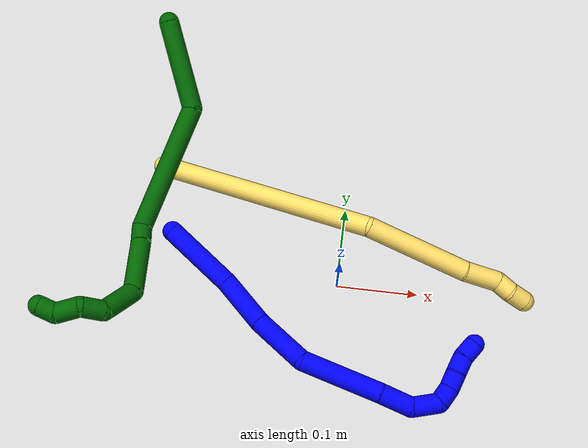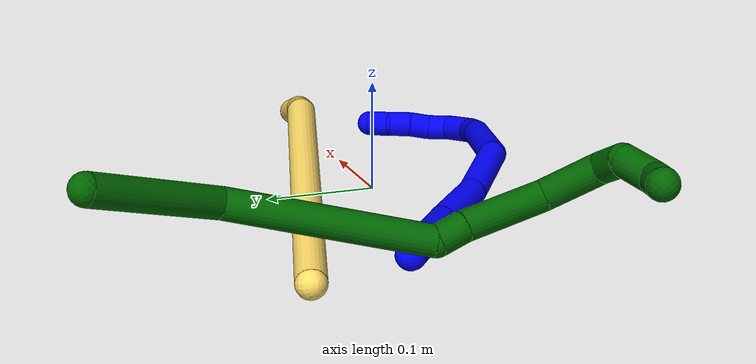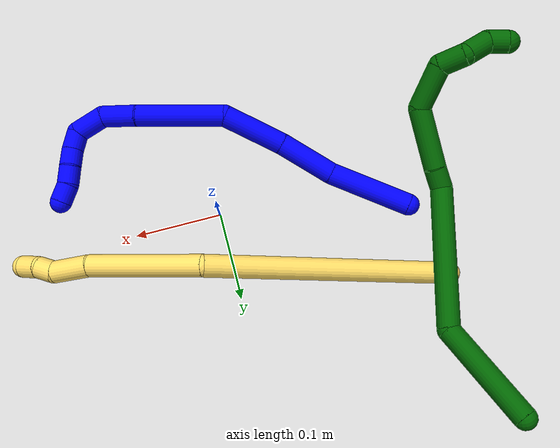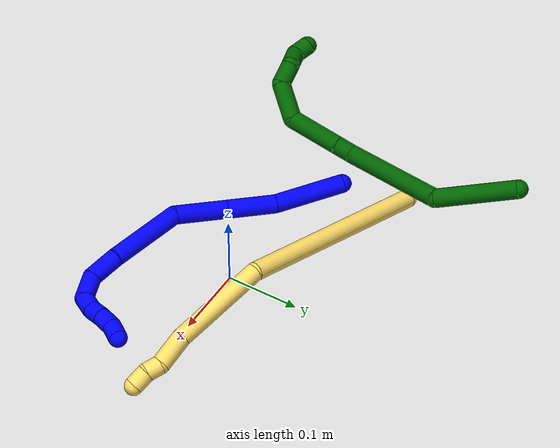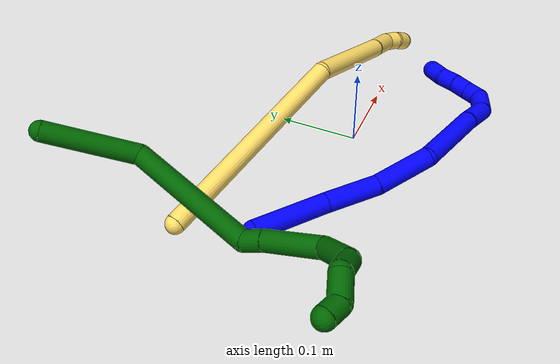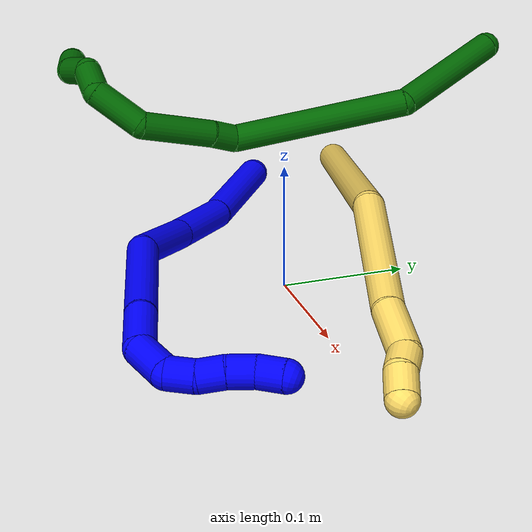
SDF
<sdf version="1.7">
 <world name="default">
  <model name="photoneo_s_sensor">
   <static>1</static>
   <pose>0 0 2 1.57079 1.57079 3.14159</pose>
   <link name="link">
    <inertial><mass>0.1</mass></inertial>
    <sensor name="sensor" type="depth">
     <update_rate>30</update_rate>
     <camera>
      <horizontal_fov>1.22</horizontal_fov>
      <image><width>1920</width><height>1200</height><format>B8G8R8</format></image>
      <clip><near>0.1</near><far>4</far></clip>
      <depth_camera><output>points</output></depth_camera>
     </camera>
     <plugin name="camera_plugin" filename="libgazebo_ros_depth_camera.so">
      <baseline>0.2</baseline>
      <alwaysOn>1</alwaysOn>
      <updateRate>0.0</updateRate>
      <cameraName>camera_ir</cameraName>
      <imageTopicName>/camera/color/image_raw</imageTopicName>
      <cameraInfoTopicName>/camera/color/camera_info</cameraInfoTopicName>
      <depthImageTopicName>/camera/depth/image_raw</depthImageTopicName>
      <depthImageCameraInfoTopicName>/camera/depth/camera_info</depthImageCameraInfoTopicName>
      <pointCloudTopicName>/camera/depth/points</pointCloudTopicName>
      <frameName>fr_optical</frameName>
      <pointCloudCutoff>0.1</pointCloudCutoff>
      <pointCloudCutoffMax>2.0</pointCloudCutoffMax>
      <distortionK1>0</distortionK1>
      <distortionK2>0</distortionK2>
      <distortionK3>0</distortionK3>
      <distortionT1>0</distortionT1>
      <distortionT2>0</distortionT2>
      <CxPrime>0</CxPrime>
      <Cx>0</Cx>
      <Cy>0</Cy>
      <focalLength>0</focalLength>
      <hackBaseline>0</hackBaseline>
     </plugin>
    </sensor>
   </link>
  </model>
  <model name="bin">
   <static>1</static>
   <link name="bottom">
    <collision name="collision-bottom">
     <pose>0 0 -0.01 0 -0 0</pose>
     <geometry><box><size>0.8 0.6 0.02</size></box></geometry>
     <surface>
      <friction><ode><mu>100</mu><mu2>100</mu2></ode></friction>
      <contact><collide_bitmask>65535</collide_bitmask></contact>
     </surface>
    </collision>
   </link>
   <link name="west_wall">
    <collision name="collision-west_wall">
     <pose>-0.41 0 0.1 0 -0 0</pose>
     <geometry><box><size>0.02 0.6 0.2</size></box></geometry>
     <surface>
      <friction><ode><mu>100</mu><mu2>100</mu2></ode></friction>
      <contact><collide_bitmask>65535</collide_bitmask></contact>
     </surface>
    </collision>
   </link>
   <link name="east_wall">
    <collision name="collision-east_wall">
     <pose>0.41 0 0.1 0 -0 0</pose>
     <geometry><box><size>0.02 0.6 0.2</size></box></geometry>
     <surface>
      <friction><ode><mu>100</mu><mu2>100</mu2></ode></friction>
      <contact><collide_bitmask>65535</collide_bitmask></contact>
     </surface>
    </collision>
   </link>
   <link name="south_wall">
    <collision name="collision-south_wall">
     <pose>0 -0.31 0.1 0 -0 0</pose>
     <geometry><box><size>0.8 0.02 0.2</size></box></geometry>
     <surface>
      <friction><ode><mu>100</mu><mu2>100</mu2></ode></friction>
      <contact><collide_bitmask>65535</collide_bitmask></contact>
     </surface>
    </collision>
   </link>
   <link name="north_wall">
    <collision name="collision-north_wall">
     <pose>0 0.31 0.1 0 -0 0</pose>
     <geometry><box><size>0.8 0.02 0.2</size></box></geometry>
     <surface>
      <friction><ode><mu>100</mu><mu2>100</mu2></ode></friction>
      <contact><collide_bitmask>65535</collide_bitmask></contact>
     </surface>
    </collision>
   </link>
  </model>
  <model name="1">
   <static>0</static>
   <link name="1">
    <collision name="collision-cylinder-e_1_1_4">
     <pose>0.040174 -0.025846 0.002964 1.45662 0.996124 0.903143</pose>
     <geometry><cylinder><radius>0.0125</radius><length>0.095723</length></cylinder></geometry>
     <surface>
      <friction><ode><mu>1.16</mu><mu2>1.16</mu2><slip1>0</slip1><slip2>0</slip2></ode></friction>
      <contact><ode><kp>1e+06</kp><kd>1</kd><max_vel>0</max_vel><min_depth>0.001</min_depth></ode></contact>
     </surface>
    </collision>
    <visual name="visual-cylinder-e_1_1_4">
     <pose>0.040174 -0.025846 0.002964 1.45662 0.996124 0.903143</pose>
     <geometry><cylinder><radius>0.0125</radius><length>0.095723</length></cylinder></geometry>
     <material><ambient>0 0 1 1</ambient></material>
    </visual>
    <collision name="collision-cylinder-e_2_4_5">
     <pose>0.109052 -0.067268 0.013447 1.12104 1.0285 0.681549</pose>
     <geometry><cylinder><radius>0.0125</radius><length>0.067026</length></cylinder></geometry>
     <surface>
      <friction><ode><mu>1.16</mu><mu2>1.16</mu2><slip1>0</slip1><slip2>0</slip2></ode></friction>
      <contact><ode><kp>1e+06</kp><kd>1</kd><max_vel>0</max_vel><min_depth>0.001</min_depth></ode></contact>
     </surface>
    </collision>
    <visual name="visual-cylinder-e_2_4_5">
     <pose>0.109052 -0.067268 0.013447 1.12104 1.0285 0.681549</pose>
     <geometry><cylinder><radius>0.0125</radius><length>0.067026</length></cylinder></geometry>
     <material><ambient>0 0 1 1</ambient></material>
    </visual>
    <collision name="collision-cylinder-e_3_5_6">
     <pose>0.171958 -0.095369 0.026352 1.16472 1.19148 0.839758</pose>
     <geometry><cylinder><radius>0.0125</radius><length>0.073636</length></cylinder></geometry>
     <surface>
      <friction><ode><mu>1.16</mu><mu2>1.16</mu2><slip1>0</slip1><slip2>0</slip2></ode></friction>
      <contact><ode><kp>1e+06</kp><kd>1</kd><max_vel>0</max_vel><min_depth>0.001</min_depth></ode></contact>
     </surface>
    </collision>
    <visual name="visual-cylinder-e_3_5_6">
     <pose>0.171958 -0.095369 0.026352 1.16472 1.19148 0.839758</pose>
     <geometry><cylinder><radius>0.0125</radius><length>0.073636</length></cylinder></geometry>
     <material><ambient>0 0 1 1</ambient></material>
    </visual>
    <collision name="collision-cylinder-e_4_6_7">
     <pose>0.24866 -0.1314 0.01611 2.15752 0.984545 1.57136</pose>
     <geometry><cylinder><radius>0.0125</radius><length>0.102041</length></cylinder></geometry>
     <surface>
      <friction><ode><mu>1.16</mu><mu2>1.16</mu2><slip1>0</slip1><slip2>0</slip2></ode></friction>
      <contact><ode><kp>1e+06</kp><kd>1</kd><max_vel>0</max_vel><min_depth>0.001</min_depth></ode></contact>
     </surface>
    </collision>
    <visual name="visual-cylinder-e_4_6_7">
     <pose>0.24866 -0.1314 0.01611 2.15752 0.984545 1.57136</pose>
     <geometry><cylinder><radius>0.0125</radius><length>0.102041</length></cylinder></geometry>
     <material><ambient>0 0 1 1</ambient></material>
    </visual>
    <collision name="collision-cylinder-e_5_7_8">
     <pose>0.306796 -0.166464 -0.006331 2.10346 0.86162 1.35491</pose>
     <geometry><cylinder><radius>0.0125</radius><length>0.041205</length></cylinder></geometry>
     <surface>
      <friction><ode><mu>1.16</mu><mu2>1.16</mu2><slip1>0</slip1><slip2>0</slip2></ode></friction>
      <contact><ode><kp>1e+06</kp><kd>1</kd><max_vel>0</max_vel><min_depth>0.001</min_depth></ode></contact>
     </surface>
    </collision>
    <visual name="visual-cylinder-e_5_7_8">
     <pose>0.306796 -0.166464 -0.006331 2.10346 0.86162 1.35491</pose>
     <geometry><cylinder><radius>0.0125</radius><length>0.041205</length></cylinder></geometry>
     <material><ambient>0 0 1 1</ambient></material>
    </visual>
    <collision name="collision-cylinder-e_6_8_9">
     <pose>0.332969 -0.182255 -0.026379 2.83201 0.648796 2.27268</pose>
     <geometry><cylinder><radius>0.0125</radius><length>0.034879</length></cylinder></geometry>
     <surface>
      <friction><ode><mu>1.16</mu><mu2>1.16</mu2><slip1>0</slip1><slip2>0</slip2></ode></friction>
      <contact><ode><kp>1e+06</kp><kd>1</kd><max_vel>0</max_vel><min_depth>0.001</min_depth></ode></contact>
     </surface>
    </collision>
    <visual name="visual-cylinder-e_6_8_9">
     <pose>0.332969 -0.182255 -0.026379 2.83201 0.648796 2.27268</pose>
     <geometry><cylinder><radius>0.0125</radius><length>0.034879</length></cylinder></geometry>
     <material><ambient>0 0 1 1</ambient></material>
    </visual>
    <collision name="collision-cylinder-e_7_9_10">
     <pose>0.344274 -0.183781 -0.050272 -2.89278 0.06967 -0.543566</pose>
     <geometry><cylinder><radius>0.0125</radius><length>0.022044</length></cylinder></geometry>
     <surface>
      <friction><ode><mu>1.16</mu><mu2>1.16</mu2><slip1>0</slip1><slip2>0</slip2></ode></friction>
      <contact><ode><kp>1e+06</kp><kd>1</kd><max_vel>0</max_vel><min_depth>0.001</min_depth></ode></contact>
     </surface>
    </collision>
    <visual name="visual-cylinder-e_7_9_10">
     <pose>0.344274 -0.183781 -0.050272 -2.89278 0.06967 -0.543566</pose>
     <geometry><cylinder><radius>0.0125</radius><length>0.022044</length></cylinder></geometry>
     <material><ambient>0 0 1 1</ambient></material>
    </visual>
    <collision name="collision-cylinder-e_8_10_11">
     <pose>0.344974 -0.175965 -0.069933 -2.62554 -0.006461 0.02448</pose>
     <geometry><cylinder><radius>0.0125</radius><length>0.020706</length></cylinder></geometry>
     <surface>
      <friction><ode><mu>1.16</mu><mu2>1.16</mu2><slip1>0</slip1><slip2>0</slip2></ode></friction>
      <contact><ode><kp>1e+06</kp><kd>1</kd><max_vel>0</max_vel><min_depth>0.001</min_depth></ode></contact>
     </surface>
    </collision>
    <visual name="visual-cylinder-e_8_10_11">
     <pose>0.344974 -0.175965 -0.069933 -2.62554 -0.006461 0.02448</pose>
     <geometry><cylinder><radius>0.0125</radius><length>0.020706</length></cylinder></geometry>
     <material><ambient>0 0 1 1</ambient></material>
    </visual>
    <collision name="collision-cylinder-e_9_11_12">
     <pose>0.344236 -0.166989 -0.088827 -2.7688 -0.063134 0.331811</pose>
     <geometry><cylinder><radius>0.0125</radius><length>0.02128</length></cylinder></geometry>
     <surface>
      <friction><ode><mu>1.16</mu><mu2>1.16</mu2><slip1>0</slip1><slip2>0</slip2></ode></friction>
      <contact><ode><kp>1e+06</kp><kd>1</kd><max_vel>0</max_vel><min_depth>0.001</min_depth></ode></contact>
     </surface>
    </collision>
    <visual name="visual-cylinder-e_9_11_12">
     <pose>0.344236 -0.166989 -0.088827 -2.7688 -0.063134 0.331811</pose>
     <geometry><cylinder><radius>0.0125</radius><length>0.02128</length></cylinder></geometry>
     <material><ambient>0 0 1 1</ambient></material>
    </visual>
    <collision name="collision-cylinder-e_10_12_2">
     <pose>0.345256 -0.16096 -0.109089 -2.9362 0.158284 -1.31179</pose>
     <geometry><cylinder><radius>0.0125</radius><length>0.021459</length></cylinder></geometry>
     <surface>
      <friction><ode><mu>1.16</mu><mu2>1.16</mu2><slip1>0</slip1><slip2>0</slip2></ode></friction>
      <contact><ode><kp>1e+06</kp><kd>1</kd><max_vel>0</max_vel><min_depth>0.001</min_depth></ode></contact>
     </surface>
    </collision>
    <visual name="visual-cylinder-e_10_12_2">
     <pose>0.345256 -0.16096 -0.109089 -2.9362 0.158284 -1.31179</pose>
     <geometry><cylinder><radius>0.0125</radius><length>0.021459</length></cylinder></geometry>
     <material><ambient>0 0 1 1</ambient></material>
    </visual>
    <collision name="collision-sphere-2">
     <pose>0.346947 -0.158799 -0.119462 0 -0 0</pose>
     <geometry><sphere><radius>0.0125</radius></sphere></geometry>
     <surface>
      <friction><ode><mu>1.16</mu><mu2>1.16</mu2><slip1>0</slip1><slip2>0</slip2></ode></friction>
      <contact><ode><kp>1e+06</kp><kd>1</kd><max_vel>0</max_vel><min_depth>0.001</min_depth></ode></contact>
     </surface>
    </collision>
    <visual name="visual-sphere-2">
     <pose>0.346947 -0.158799 -0.119462 0 -0 0</pose>
     <geometry><sphere><radius>0.0125</radius></sphere></geometry>
     <material><ambient>0 0 1 1</ambient></material>
    </visual>
    <collision name="collision-sphere-12">
     <pose>0.343565 -0.163121 -0.098717 0 -0 0</pose>
     <geometry><sphere><radius>0.0125</radius></sphere></geometry>
     <surface>
      <friction><ode><mu>1.16</mu><mu2>1.16</mu2><slip1>0</slip1><slip2>0</slip2></ode></friction>
      <contact><ode><kp>1e+06</kp><kd>1</kd><max_vel>0</max_vel><min_depth>0.001</min_depth></ode></contact>
     </surface>
    </collision>
    <visual name="visual-sphere-12">
     <pose>0.343565 -0.163121 -0.098717 0 -0 0</pose>
     <geometry><sphere><radius>0.0125</radius></sphere></geometry>
     <material><ambient>0 0 1 1</ambient></material>
    </visual>
    <collision name="collision-sphere-11">
     <pose>0.344907 -0.170856 -0.078937 0 -0 0</pose>
     <geometry><sphere><radius>0.0125</radius></sphere></geometry>
     <surface>
      <friction><ode><mu>1.16</mu><mu2>1.16</mu2><slip1>0</slip1><slip2>0</slip2></ode></friction>
      <contact><ode><kp>1e+06</kp><kd>1</kd><max_vel>0</max_vel><min_depth>0.001</min_depth></ode></contact>
     </surface>
    </collision>
    <visual name="visual-sphere-11">
     <pose>0.344907 -0.170856 -0.078937 0 -0 0</pose>
     <geometry><sphere><radius>0.0125</radius></sphere></geometry>
     <material><ambient>0 0 1 1</ambient></material>
    </visual>
    <collision name="collision-sphere-10">
     <pose>0.345041 -0.181073 -0.060928 0 -0 0</pose>
     <geometry><sphere><radius>0.0125</radius></sphere></geometry>
     <surface>
      <friction><ode><mu>1.16</mu><mu2>1.16</mu2><slip1>0</slip1><slip2>0</slip2></ode></friction>
      <contact><ode><kp>1e+06</kp><kd>1</kd><max_vel>0</max_vel><min_depth>0.001</min_depth></ode></contact>
     </surface>
    </collision>
    <visual name="visual-sphere-10">
     <pose>0.345041 -0.181073 -0.060928 0 -0 0</pose>
     <geometry><sphere><radius>0.0125</radius></sphere></geometry>
     <material><ambient>0 0 1 1</ambient></material>
    </visual>
    <collision name="collision-sphere-9">
     <pose>0.343506 -0.186489 -0.039615 0 -0 0</pose>
     <geometry><sphere><radius>0.0125</radius></sphere></geometry>
     <surface>
      <friction><ode><mu>1.16</mu><mu2>1.16</mu2><slip1>0</slip1><slip2>0</slip2></ode></friction>
      <contact><ode><kp>1e+06</kp><kd>1</kd><max_vel>0</max_vel><min_depth>0.001</min_depth></ode></contact>
     </surface>
    </collision>
    <visual name="visual-sphere-9">
     <pose>0.343506 -0.186489 -0.039615 0 -0 0</pose>
     <geometry><sphere><radius>0.0125</radius></sphere></geometry>
     <material><ambient>0 0 1 1</ambient></material>
    </visual>
    <collision name="collision-sphere-4">
     <pose>0.080347 -0.051692 0.005928 0 -0 0</pose>
     <geometry><sphere><radius>0.0125</radius></sphere></geometry>
     <surface>
      <friction><ode><mu>1.16</mu><mu2>1.16</mu2><slip1>0</slip1><slip2>0</slip2></ode></friction>
      <contact><ode><kp>1e+06</kp><kd>1</kd><max_vel>0</max_vel><min_depth>0.001</min_depth></ode></contact>
     </surface>
    </collision>
    <visual name="visual-sphere-4">
     <pose>0.080347 -0.051692 0.005928 0 -0 0</pose>
     <geometry><sphere><radius>0.0125</radius></sphere></geometry>
     <material><ambient>0 0 1 1</ambient></material>
    </visual>
    <collision name="collision-sphere-1">
     <geometry><sphere><radius>0.0125</radius></sphere></geometry>
     <surface>
      <friction><ode><mu>1.16</mu><mu2>1.16</mu2><slip1>0</slip1><slip2>0</slip2></ode></friction>
      <contact><ode><kp>1e+06</kp><kd>1</kd><max_vel>0</max_vel><min_depth>0.001</min_depth></ode></contact>
     </surface>
    </collision>
    <visual name="visual-sphere-1">
     <geometry><sphere><radius>0.0125</radius></sphere></geometry>
     <material><ambient>0 0 1 1</ambient></material>
    </visual>
    <collision name="collision-sphere-8">
     <pose>0.322432 -0.178021 -0.013144 0 -0 0</pose>
     <geometry><sphere><radius>0.0125</radius></sphere></geometry>
     <surface>
      <friction><ode><mu>1.16</mu><mu2>1.16</mu2><slip1>0</slip1><slip2>0</slip2></ode></friction>
      <contact><ode><kp>1e+06</kp><kd>1</kd><max_vel>0</max_vel><min_depth>0.001</min_depth></ode></contact>
     </surface>
    </collision>
    <visual name="visual-sphere-8">
     <pose>0.322432 -0.178021 -0.013144 0 -0 0</pose>
     <geometry><sphere><radius>0.0125</radius></sphere></geometry>
     <material><ambient>0 0 1 1</ambient></material>
    </visual>
    <collision name="collision-sphere-5">
     <pose>0.137757 -0.082845 0.020967 0 -0 0</pose>
     <geometry><sphere><radius>0.0125</radius></sphere></geometry>
     <surface>
      <friction><ode><mu>1.16</mu><mu2>1.16</mu2><slip1>0</slip1><slip2>0</slip2></ode></friction>
      <contact><ode><kp>1e+06</kp><kd>1</kd><max_vel>0</max_vel><min_depth>0.001</min_depth></ode></contact>
     </surface>
    </collision>
    <visual name="visual-sphere-5">
     <pose>0.137757 -0.082845 0.020967 0 -0 0</pose>
     <geometry><sphere><radius>0.0125</radius></sphere></geometry>
     <material><ambient>0 0 1 1</ambient></material>
    </visual>
    <collision name="collision-sphere-6">
     <pose>0.206159 -0.107894 0.031737 0 -0 0</pose>
     <geometry><sphere><radius>0.0125</radius></sphere></geometry>
     <surface>
      <friction><ode><mu>1.16</mu><mu2>1.16</mu2><slip1>0</slip1><slip2>0</slip2></ode></friction>
      <contact><ode><kp>1e+06</kp><kd>1</kd><max_vel>0</max_vel><min_depth>0.001</min_depth></ode></contact>
     </surface>
    </collision>
    <visual name="visual-sphere-6">
     <pose>0.206159 -0.107894 0.031737 0 -0 0</pose>
     <geometry><sphere><radius>0.0125</radius></sphere></geometry>
     <material><ambient>0 0 1 1</ambient></material>
    </visual>
    <collision name="collision-sphere-7">
     <pose>0.291161 -0.154906 0.000483 0 -0 0</pose>
     <geometry><sphere><radius>0.0125</radius></sphere></geometry>
     <surface>
      <friction><ode><mu>1.16</mu><mu2>1.16</mu2><slip1>0</slip1><slip2>0</slip2></ode></friction>
      <contact><ode><kp>1e+06</kp><kd>1</kd><max_vel>0</max_vel><min_depth>0.001</min_depth></ode></contact>
     </surface>
    </collision>
    <visual name="visual-sphere-7">
     <pose>0.291161 -0.154906 0.000483 0 -0 0</pose>
     <geometry><sphere><radius>0.0125</radius></sphere></geometry>
     <material><ambient>0 0 1 1</ambient></material>
    </visual>
    <inertial>
     <pose>0.205825 -0.110664 -0.006398 0 -0 0</pose>
     <mass>0.5</mass>
     <inertia>
      <ixx>0.000185</ixx>
      <ixy>0</ixy>
      <ixz>0</ixz>
      <iyy>0.000275</iyy>
      <iyz>0</iyz>
      <izz>-0.000105</izz>
     </inertia>
    </inertial>
   </link>
   <pose>-0.212737 0.043578 0.014528 1.24814 -0.497996 -0.415307</pose>
  </model>
  <model name="5">
   <static>0</static>
   <link name="5">
    <collision name="collision-cylinder-e_1_1_4">
     <pose>0.050852 -0.088983 0.097258 0.740995 0.368175 0.144398</pose>
     <geometry><cylinder><radius>0.0125</radius><length>0.282582</length></cylinder></geometry>
     <surface>
      <friction><ode><mu>1.16</mu><mu2>1.16</mu2><slip1>0</slip1><slip2>0</slip2></ode></friction>
      <contact><ode><kp>1e+06</kp><kd>1</kd><max_vel>0</max_vel><min_depth>0.001</min_depth></ode></contact>
     </surface>
    </collision>
    <visual name="visual-cylinder-e_1_1_4">
     <pose>0.050852 -0.088983 0.097258 0.740995 0.368175 0.144398</pose>
     <geometry><cylinder><radius>0.0125</radius><length>0.282582</length></cylinder></geometry>
     <material><ambient>1 0.858824 0.4 1</ambient></material>
    </visual>
    <collision name="collision-cylinder-e_2_4_5">
     <pose>0.13894 -0.195077 0.245102 0.326169 0.608891 0.103313</pose>
     <geometry><cylinder><radius>0.0125</radius><length>0.130202</length></cylinder></geometry>
     <surface>
      <friction><ode><mu>1.16</mu><mu2>1.16</mu2><slip1>0</slip1><slip2>0</slip2></ode></friction>
      <contact><ode><kp>1e+06</kp><kd>1</kd><max_vel>0</max_vel><min_depth>0.001</min_depth></ode></contact>
     </surface>
    </collision>
    <visual name="visual-cylinder-e_2_4_5">
     <pose>0.13894 -0.195077 0.245102 0.326169 0.608891 0.103313</pose>
     <geometry><cylinder><radius>0.0125</radius><length>0.130202</length></cylinder></geometry>
     <material><ambient>1 0.858824 0.4 1</ambient></material>
    </visual>
    <collision name="collision-cylinder-e_3_5_6">
     <pose>0.186812 -0.215276 0.314761 0.160517 0.50324 0.041347</pose>
     <geometry><cylinder><radius>0.0125</radius><length>0.044113</length></cylinder></geometry>
     <surface>
      <friction><ode><mu>1.16</mu><mu2>1.16</mu2><slip1>0</slip1><slip2>0</slip2></ode></friction>
      <contact><ode><kp>1e+06</kp><kd>1</kd><max_vel>0</max_vel><min_depth>0.001</min_depth></ode></contact>
     </surface>
    </collision>
    <visual name="visual-cylinder-e_3_5_6">
     <pose>0.186812 -0.215276 0.314761 0.160517 0.50324 0.041347</pose>
     <geometry><cylinder><radius>0.0125</radius><length>0.044113</length></cylinder></geometry>
     <material><ambient>1 0.858824 0.4 1</ambient></material>
    </visual>
    <collision name="collision-cylinder-e_4_6_7">
     <pose>0.205065 -0.221486 0.339726 0.487332 0.851729 0.224599</pose>
     <geometry><cylinder><radius>0.0125</radius><length>0.020243</length></cylinder></geometry>
     <surface>
      <friction><ode><mu>1.16</mu><mu2>1.16</mu2><slip1>0</slip1><slip2>0</slip2></ode></friction>
      <contact><ode><kp>1e+06</kp><kd>1</kd><max_vel>0</max_vel><min_depth>0.001</min_depth></ode></contact>
     </surface>
    </collision>
    <visual name="visual-cylinder-e_4_6_7">
     <pose>0.205065 -0.221486 0.339726 0.487332 0.851729 0.224599</pose>
     <geometry><cylinder><radius>0.0125</radius><length>0.020243</length></cylinder></geometry>
     <material><ambient>1 0.858824 0.4 1</ambient></material>
    </visual>
    <collision name="collision-cylinder-e_5_7_2">
     <pose>0.22055 -0.225043 0.353895 0.052556 0.759355 0.020976</pose>
     <geometry><cylinder><radius>0.0125</radius><length>0.02286</length></cylinder></geometry>
     <surface>
      <friction><ode><mu>1.16</mu><mu2>1.16</mu2><slip1>0</slip1><slip2>0</slip2></ode></friction>
      <contact><ode><kp>1e+06</kp><kd>1</kd><max_vel>0</max_vel><min_depth>0.001</min_depth></ode></contact>
     </surface>
    </collision>
    <visual name="visual-cylinder-e_5_7_2">
     <pose>0.22055 -0.225043 0.353895 0.052556 0.759355 0.020976</pose>
     <geometry><cylinder><radius>0.0125</radius><length>0.02286</length></cylinder></geometry>
     <material><ambient>1 0.858824 0.4 1</ambient></material>
    </visual>
    <collision name="collision-sphere-2">
     <pose>0.228419 -0.225479 0.362174 0 -0 0</pose>
     <geometry><sphere><radius>0.0125</radius></sphere></geometry>
     <surface>
      <friction><ode><mu>1.16</mu><mu2>1.16</mu2><slip1>0</slip1><slip2>0</slip2></ode></friction>
      <contact><ode><kp>1e+06</kp><kd>1</kd><max_vel>0</max_vel><min_depth>0.001</min_depth></ode></contact>
     </surface>
    </collision>
    <visual name="visual-sphere-2">
     <pose>0.228419 -0.225479 0.362174 0 -0 0</pose>
     <geometry><sphere><radius>0.0125</radius></sphere></geometry>
     <material><ambient>1 0.858824 0.4 1</ambient></material>
    </visual>
    <collision name="collision-sphere-7">
     <pose>0.21268 -0.224608 0.345617 0 -0 0</pose>
     <geometry><sphere><radius>0.0125</radius></sphere></geometry>
     <surface>
      <friction><ode><mu>1.16</mu><mu2>1.16</mu2><slip1>0</slip1><slip2>0</slip2></ode></friction>
      <contact><ode><kp>1e+06</kp><kd>1</kd><max_vel>0</max_vel><min_depth>0.001</min_depth></ode></contact>
     </surface>
    </collision>
    <visual name="visual-sphere-7">
     <pose>0.21268 -0.224608 0.345617 0 -0 0</pose>
     <geometry><sphere><radius>0.0125</radius></sphere></geometry>
     <material><ambient>1 0.858824 0.4 1</ambient></material>
    </visual>
    <collision name="collision-sphere-6">
     <pose>0.197449 -0.218364 0.333835 0 -0 0</pose>
     <geometry><sphere><radius>0.0125</radius></sphere></geometry>
     <surface>
      <friction><ode><mu>1.16</mu><mu2>1.16</mu2><slip1>0</slip1><slip2>0</slip2></ode></friction>
      <contact><ode><kp>1e+06</kp><kd>1</kd><max_vel>0</max_vel><min_depth>0.001</min_depth></ode></contact>
     </surface>
    </collision>
    <visual name="visual-sphere-6">
     <pose>0.197449 -0.218364 0.333835 0 -0 0</pose>
     <geometry><sphere><radius>0.0125</radius></sphere></geometry>
     <material><ambient>1 0.858824 0.4 1</ambient></material>
    </visual>
    <collision name="collision-sphere-5">
     <pose>0.176175 -0.212187 0.295688 0 -0 0</pose>
     <geometry><sphere><radius>0.0125</radius></sphere></geometry>
     <surface>
      <friction><ode><mu>1.16</mu><mu2>1.16</mu2><slip1>0</slip1><slip2>0</slip2></ode></friction>
      <contact><ode><kp>1e+06</kp><kd>1</kd><max_vel>0</max_vel><min_depth>0.001</min_depth></ode></contact>
     </surface>
    </collision>
    <visual name="visual-sphere-5">
     <pose>0.176175 -0.212187 0.295688 0 -0 0</pose>
     <geometry><sphere><radius>0.0125</radius></sphere></geometry>
     <material><ambient>1 0.858824 0.4 1</ambient></material>
    </visual>
    <collision name="collision-sphere-1">
     <geometry><sphere><radius>0.0125</radius></sphere></geometry>
     <surface>
      <friction><ode><mu>1.16</mu><mu2>1.16</mu2><slip1>0</slip1><slip2>0</slip2></ode></friction>
      <contact><ode><kp>1e+06</kp><kd>1</kd><max_vel>0</max_vel><min_depth>0.001</min_depth></ode></contact>
     </surface>
    </collision>
    <visual name="visual-sphere-1">
     <geometry><sphere><radius>0.0125</radius></sphere></geometry>
     <material><ambient>1 0.858824 0.4 1</ambient></material>
    </visual>
    <collision name="collision-sphere-4">
     <pose>0.101705 -0.177966 0.194516 0 -0 0</pose>
     <geometry><sphere><radius>0.0125</radius></sphere></geometry>
     <surface>
      <friction><ode><mu>1.16</mu><mu2>1.16</mu2><slip1>0</slip1><slip2>0</slip2></ode></friction>
      <contact><ode><kp>1e+06</kp><kd>1</kd><max_vel>0</max_vel><min_depth>0.001</min_depth></ode></contact>
     </surface>
    </collision>
    <visual name="visual-sphere-4">
     <pose>0.101705 -0.177966 0.194516 0 -0 0</pose>
     <geometry><sphere><radius>0.0125</radius></sphere></geometry>
     <material><ambient>1 0.858824 0.4 1</ambient></material>
    </visual>
    <inertial>
     <pose>0.099788 -0.139338 0.176497 0 -0 0</pose>
     <mass>0.5</mass>
     <inertia>
      <ixx>0.002199</ixx>
      <ixy>0</ixy>
      <ixz>0</ixz>
      <iyy>0.001894</iyy>
      <iyz>0</iyz>
      <izz>0.000475</izz>
     </inertia>
    </inertial>
   </link>
   <pose>-0.236268 0.13043 0.011498 -1.81787 0.506558 -1.26153</pose>
  </model>
  <model name="6">
   <static>0</static>
   <link name="6">
    <collision name="collision-cylinder-e_1_1_4">
     <pose>-0.026258 -0.03437 -0.036242 2.38271 -0.483999 -1.10855</pose>
     <geometry><cylinder><radius>0.0125</radius><length>0.112858</length></cylinder></geometry>
     <surface>
      <friction><ode><mu>1.16</mu><mu2>1.16</mu2><slip1>0</slip1><slip2>0</slip2></ode></friction>
      <contact><ode><kp>1e+06</kp><kd>1</kd><max_vel>0</max_vel><min_depth>0.001</min_depth></ode></contact>
     </surface>
    </collision>
    <visual name="visual-cylinder-e_1_1_4">
     <pose>-0.026258 -0.03437 -0.036242 2.38271 -0.483999 -1.10855</pose>
     <geometry><cylinder><radius>0.0125</radius><length>0.112858</length></cylinder></geometry>
     <material><ambient>0 0.392157 0.003922 1</ambient></material>
    </visual>
    <collision name="collision-cylinder-e_2_4_5">
     <pose>-0.039346 -0.130483 -0.122378 2.25044 0.164399 0.341627</pose>
     <geometry><cylinder><radius>0.0125</radius><length>0.160935</length></cylinder></geometry>
     <surface>
      <friction><ode><mu>1.16</mu><mu2>1.16</mu2><slip1>0</slip1><slip2>0</slip2></ode></friction>
      <contact><ode><kp>1e+06</kp><kd>1</kd><max_vel>0</max_vel><min_depth>0.001</min_depth></ode></contact>
     </surface>
    </collision>
    <visual name="visual-cylinder-e_2_4_5">
     <pose>-0.039346 -0.130483 -0.122378 2.25044 0.164399 0.341627</pose>
     <geometry><cylinder><radius>0.0125</radius><length>0.160935</length></cylinder></geometry>
     <material><ambient>0 0.392157 0.003922 1</ambient></material>
    </visual>
    <collision name="collision-cylinder-e_3_5_6">
     <pose>-0.026308 -0.195058 -0.18414 2.90744 -0.010747 -0.091311</pose>
     <geometry><cylinder><radius>0.0125</radius><length>0.024404</length></cylinder></geometry>
     <surface>
      <friction><ode><mu>1.16</mu><mu2>1.16</mu2><slip1>0</slip1><slip2>0</slip2></ode></friction>
      <contact><ode><kp>1e+06</kp><kd>1</kd><max_vel>0</max_vel><min_depth>0.001</min_depth></ode></contact>
     </surface>
    </collision>
    <visual name="visual-cylinder-e_3_5_6">
     <pose>-0.026308 -0.195058 -0.18414 2.90744 -0.010747 -0.091311</pose>
     <geometry><cylinder><radius>0.0125</radius><length>0.024404</length></cylinder></geometry>
     <material><ambient>0 0.392157 0.003922 1</ambient></material>
    </visual>
    <collision name="collision-cylinder-e_4_6_7">
     <pose>-0.025433 -0.209902 -0.228365 2.78608 0.029141 0.161862</pose>
     <geometry><cylinder><radius>0.0125</radius><length>0.069059</length></cylinder></geometry>
     <surface>
      <friction><ode><mu>1.16</mu><mu2>1.16</mu2><slip1>0</slip1><slip2>0</slip2></ode></friction>
      <contact><ode><kp>1e+06</kp><kd>1</kd><max_vel>0</max_vel><min_depth>0.001</min_depth></ode></contact>
     </surface>
    </collision>
    <visual name="visual-cylinder-e_4_6_7">
     <pose>-0.025433 -0.209902 -0.228365 2.78608 0.029141 0.161862</pose>
     <geometry><cylinder><radius>0.0125</radius><length>0.069059</length></cylinder></geometry>
     <material><ambient>0 0.392157 0.003922 1</ambient></material>
    </visual>
    <collision name="collision-cylinder-e_5_7_8">
     <pose>-0.007653 -0.225406 -0.279305 2.95595 0.725645 2.66067</pose>
     <geometry><cylinder><radius>0.0125</radius><length>0.050552</length></cylinder></geometry>
     <surface>
      <friction><ode><mu>1.16</mu><mu2>1.16</mu2><slip1>0</slip1><slip2>0</slip2></ode></friction>
      <contact><ode><kp>1e+06</kp><kd>1</kd><max_vel>0</max_vel><min_depth>0.001</min_depth></ode></contact>
     </surface>
    </collision>
    <visual name="visual-cylinder-e_5_7_8">
     <pose>-0.007653 -0.225406 -0.279305 2.95595 0.725645 2.66067</pose>
     <geometry><cylinder><radius>0.0125</radius><length>0.050552</length></cylinder></geometry>
     <material><ambient>0 0.392157 0.003922 1</ambient></material>
    </visual>
    <collision name="collision-cylinder-e_6_8_9">
     <pose>0.023623 -0.228364 -0.29945 -2.81304 1.45751 -2.77438</pose>
     <geometry><cylinder><radius>0.0125</radius><length>0.029192</length></cylinder></geometry>
     <surface>
      <friction><ode><mu>1.16</mu><mu2>1.16</mu2><slip1>0</slip1><slip2>0</slip2></ode></friction>
      <contact><ode><kp>1e+06</kp><kd>1</kd><max_vel>0</max_vel><min_depth>0.001</min_depth></ode></contact>
     </surface>
    </collision>
    <visual name="visual-cylinder-e_6_8_9">
     <pose>0.023623 -0.228364 -0.29945 -2.81304 1.45751 -2.77438</pose>
     <geometry><cylinder><radius>0.0125</radius><length>0.029192</length></cylinder></geometry>
     <material><ambient>0 0.392157 0.003922 1</ambient></material>
    </visual>
    <collision name="collision-cylinder-e_7_9_10">
     <pose>0.050207 -0.237542 -0.300663 1.53484 0.893432 0.865727</pose>
     <geometry><cylinder><radius>0.0125</radius><length>0.031009</length></cylinder></geometry>
     <surface>
      <friction><ode><mu>1.16</mu><mu2>1.16</mu2><slip1>0</slip1><slip2>0</slip2></ode></friction>
      <contact><ode><kp>1e+06</kp><kd>1</kd><max_vel>0</max_vel><min_depth>0.001</min_depth></ode></contact>
     </surface>
    </collision>
    <visual name="visual-cylinder-e_7_9_10">
     <pose>0.050207 -0.237542 -0.300663 1.53484 0.893432 0.865727</pose>
     <geometry><cylinder><radius>0.0125</radius><length>0.031009</length></cylinder></geometry>
     <material><ambient>0 0.392157 0.003922 1</ambient></material>
    </visual>
    <collision name="collision-cylinder-e_8_10_2">
     <pose>0.072535 -0.247682 -0.296351 0.107773 1.19985 0.073758</pose>
     <geometry><cylinder><radius>0.0125</radius><length>0.021989</length></cylinder></geometry>
     <surface>
      <friction><ode><mu>1.16</mu><mu2>1.16</mu2><slip1>0</slip1><slip2>0</slip2></ode></friction>
      <contact><ode><kp>1e+06</kp><kd>1</kd><max_vel>0</max_vel><min_depth>0.001</min_depth></ode></contact>
     </surface>
    </collision>
    <visual name="visual-cylinder-e_8_10_2">
     <pose>0.072535 -0.247682 -0.296351 0.107773 1.19985 0.073758</pose>
     <geometry><cylinder><radius>0.0125</radius><length>0.021989</length></cylinder></geometry>
     <material><ambient>0 0.392157 0.003922 1</ambient></material>
    </visual>
    <collision name="collision-sphere-2">
     <pose>0.082782 -0.248111 -0.292389 0 -0 0</pose>
     <geometry><sphere><radius>0.0125</radius></sphere></geometry>
     <surface>
      <friction><ode><mu>1.16</mu><mu2>1.16</mu2><slip1>0</slip1><slip2>0</slip2></ode></friction>
      <contact><ode><kp>1e+06</kp><kd>1</kd><max_vel>0</max_vel><min_depth>0.001</min_depth></ode></contact>
     </surface>
    </collision>
    <visual name="visual-sphere-2">
     <pose>0.082782 -0.248111 -0.292389 0 -0 0</pose>
     <geometry><sphere><radius>0.0125</radius></sphere></geometry>
     <material><ambient>0 0.392157 0.003922 1</ambient></material>
    </visual>
    <collision name="collision-sphere-10">
     <pose>0.062288 -0.247253 -0.300314 0 -0 0</pose>
     <geometry><sphere><radius>0.0125</radius></sphere></geometry>
     <surface>
      <friction><ode><mu>1.16</mu><mu2>1.16</mu2><slip1>0</slip1><slip2>0</slip2></ode></friction>
      <contact><ode><kp>1e+06</kp><kd>1</kd><max_vel>0</max_vel><min_depth>0.001</min_depth></ode></contact>
     </surface>
    </collision>
    <visual name="visual-sphere-10">
     <pose>0.062288 -0.247253 -0.300314 0 -0 0</pose>
     <geometry><sphere><radius>0.0125</radius></sphere></geometry>
     <material><ambient>0 0.392157 0.003922 1</ambient></material>
    </visual>
    <collision name="collision-sphere-9">
     <pose>0.038125 -0.227831 -0.301012 0 -0 0</pose>
     <geometry><sphere><radius>0.0125</radius></sphere></geometry>
     <surface>
      <friction><ode><mu>1.16</mu><mu2>1.16</mu2><slip1>0</slip1><slip2>0</slip2></ode></friction>
      <contact><ode><kp>1e+06</kp><kd>1</kd><max_vel>0</max_vel><min_depth>0.001</min_depth></ode></contact>
     </surface>
    </collision>
    <visual name="visual-sphere-9">
     <pose>0.038125 -0.227831 -0.301012 0 -0 0</pose>
     <geometry><sphere><radius>0.0125</radius></sphere></geometry>
     <material><ambient>0 0.392157 0.003922 1</ambient></material>
    </visual>
    <collision name="collision-sphere-4">
     <pose>-0.052516 -0.068739 -0.072485 0 -0 0</pose>
     <geometry><sphere><radius>0.0125</radius></sphere></geometry>
     <surface>
      <friction><ode><mu>1.16</mu><mu2>1.16</mu2><slip1>0</slip1><slip2>0</slip2></ode></friction>
      <contact><ode><kp>1e+06</kp><kd>1</kd><max_vel>0</max_vel><min_depth>0.001</min_depth></ode></contact>
     </surface>
    </collision>
    <visual name="visual-sphere-4">
     <pose>-0.052516 -0.068739 -0.072485 0 -0 0</pose>
     <geometry><sphere><radius>0.0125</radius></sphere></geometry>
     <material><ambient>0 0.392157 0.003922 1</ambient></material>
    </visual>
    <collision name="collision-sphere-1">
     <geometry><sphere><radius>0.0125</radius></sphere></geometry>
     <surface>
      <friction><ode><mu>1.16</mu><mu2>1.16</mu2><slip1>0</slip1><slip2>0</slip2></ode></friction>
      <contact><ode><kp>1e+06</kp><kd>1</kd><max_vel>0</max_vel><min_depth>0.001</min_depth></ode></contact>
     </surface>
    </collision>
    <visual name="visual-sphere-1">
     <geometry><sphere><radius>0.0125</radius></sphere></geometry>
     <material><ambient>0 0.392157 0.003922 1</ambient></material>
    </visual>
    <collision name="collision-sphere-8">
     <pose>0.00912 -0.228896 -0.297889 0 -0 0</pose>
     <geometry><sphere><radius>0.0125</radius></sphere></geometry>
     <surface>
      <friction><ode><mu>1.16</mu><mu2>1.16</mu2><slip1>0</slip1><slip2>0</slip2></ode></friction>
      <contact><ode><kp>1e+06</kp><kd>1</kd><max_vel>0</max_vel><min_depth>0.001</min_depth></ode></contact>
     </surface>
    </collision>
    <visual name="visual-sphere-8">
     <pose>0.00912 -0.228896 -0.297889 0 -0 0</pose>
     <geometry><sphere><radius>0.0125</radius></sphere></geometry>
     <material><ambient>0 0.392157 0.003922 1</ambient></material>
    </visual>
    <collision name="collision-sphere-5">
     <pose>-0.026177 -0.192227 -0.172271 0 -0 0</pose>
     <geometry><sphere><radius>0.0125</radius></sphere></geometry>
     <surface>
      <friction><ode><mu>1.16</mu><mu2>1.16</mu2><slip1>0</slip1><slip2>0</slip2></ode></friction>
      <contact><ode><kp>1e+06</kp><kd>1</kd><max_vel>0</max_vel><min_depth>0.001</min_depth></ode></contact>
     </surface>
    </collision>
    <visual name="visual-sphere-5">
     <pose>-0.026177 -0.192227 -0.172271 0 -0 0</pose>
     <geometry><sphere><radius>0.0125</radius></sphere></geometry>
     <material><ambient>0 0.392157 0.003922 1</ambient></material>
    </visual>
    <collision name="collision-sphere-6">
     <pose>-0.026439 -0.197889 -0.196008 0 -0 0</pose>
     <geometry><sphere><radius>0.0125</radius></sphere></geometry>
     <surface>
      <friction><ode><mu>1.16</mu><mu2>1.16</mu2><slip1>0</slip1><slip2>0</slip2></ode></friction>
      <contact><ode><kp>1e+06</kp><kd>1</kd><max_vel>0</max_vel><min_depth>0.001</min_depth></ode></contact>
     </surface>
    </collision>
    <visual name="visual-sphere-6">
     <pose>-0.026439 -0.197889 -0.196008 0 -0 0</pose>
     <geometry><sphere><radius>0.0125</radius></sphere></geometry>
     <material><ambient>0 0.392157 0.003922 1</ambient></material>
    </visual>
    <collision name="collision-sphere-7">
     <pose>-0.024427 -0.221916 -0.260722 0 -0 0</pose>
     <geometry><sphere><radius>0.0125</radius></sphere></geometry>
     <surface>
      <friction><ode><mu>1.16</mu><mu2>1.16</mu2><slip1>0</slip1><slip2>0</slip2></ode></friction>
      <contact><ode><kp>1e+06</kp><kd>1</kd><max_vel>0</max_vel><min_depth>0.001</min_depth></ode></contact>
     </surface>
    </collision>
    <visual name="visual-sphere-7">
     <pose>-0.024427 -0.221916 -0.260722 0 -0 0</pose>
     <geometry><sphere><radius>0.0125</radius></sphere></geometry>
     <material><ambient>0 0.392157 0.003922 1</ambient></material>
    </visual>
    <inertial>
     <pose>-0.016479 -0.150015 -0.165501 0 -0 0</pose>
     <mass>0.5</mass>
     <inertia>
      <ixx>0.000439</ixx>
      <ixy>0</ixy>
      <ixz>0</ixz>
      <iyy>-0.0002</iyy>
      <iyz>0</iyz>
      <izz>0.000322</izz>
     </inertia>
    </inertial>
   </link>
   <pose>-0.245495 0.288306 0.102855 2.17362 -0.362468 3.11865</pose>
  </model>
 </world>
</sdf>
